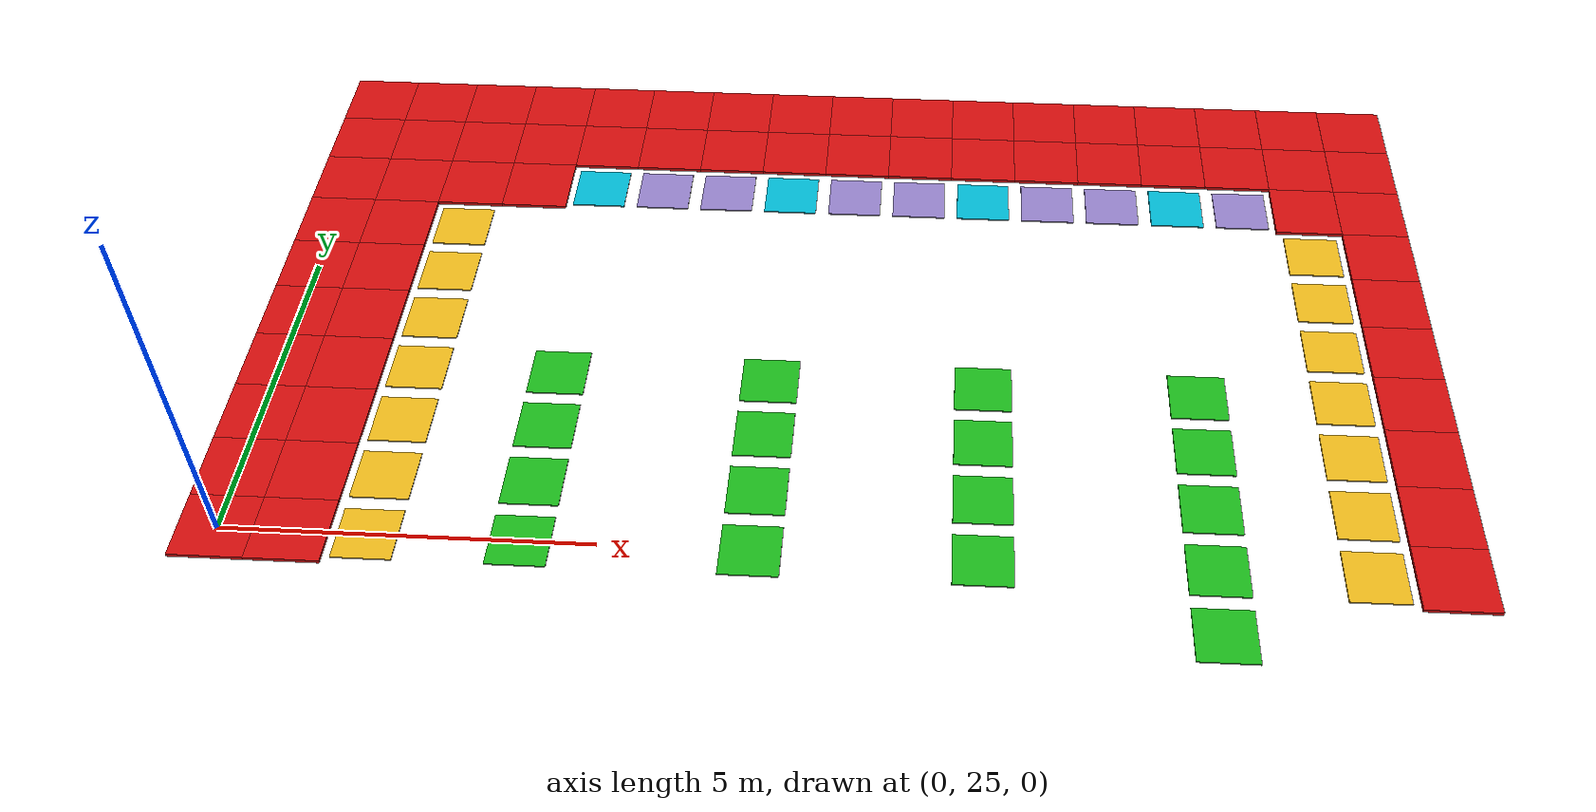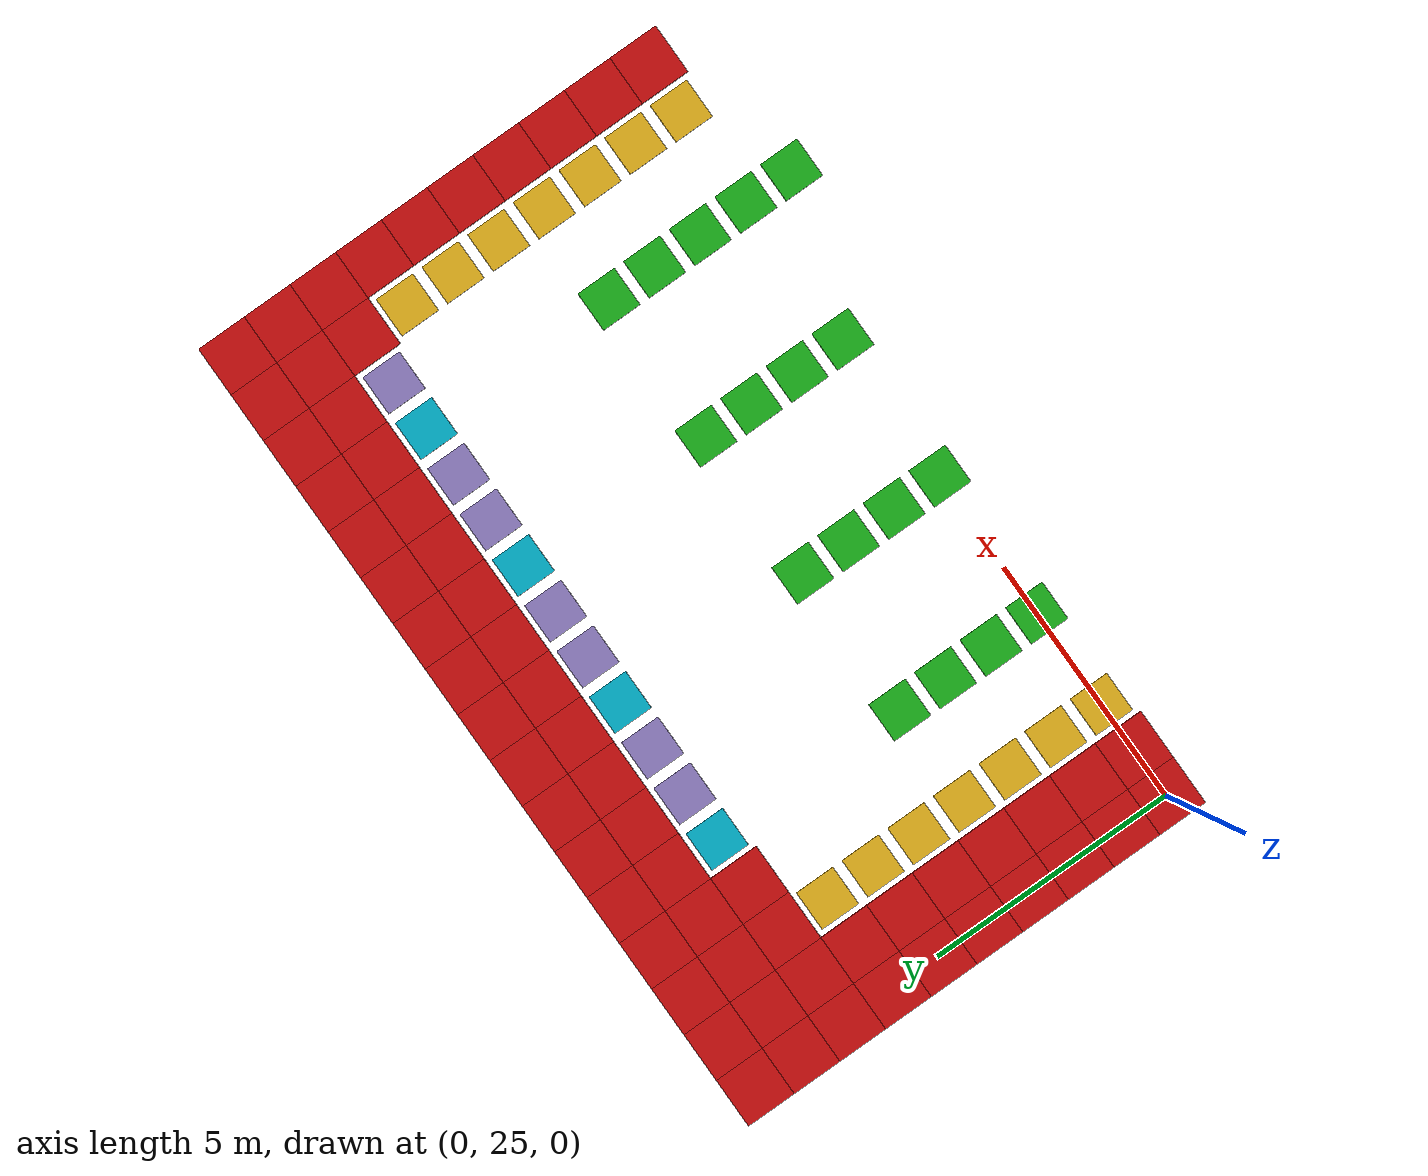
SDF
<sdf version="1.10">
 <world name="warehouse_grid">
  <model name="blocked_0014">
   <static>true</static>
   <pose>0.0
        25.0
        0.045
        0 0 0</pose>
   <link name="link">
    <visual name="visual">
     <geometry><box><size>1.0
                1.0
                0.05</size></box></geometry>
     <material><ambient>0.8 0.05 0.05 1</ambient><diffuse>0.8 0.05 0.05 1</diffuse></material>
    </visual>
   </link>
  </model>
  <model name="blocked_0015">
   <static>true</static>
   <pose>0.0
        26.0
        0.045
        0 0 0</pose>
   <link name="link">
    <visual name="visual">
     <geometry><box><size>1.0
                1.0
                0.05</size></box></geometry>
     <material><ambient>0.8 0.05 0.05 1</ambient><diffuse>0.8 0.05 0.05 1</diffuse></material>
    </visual>
   </link>
  </model>
  <model name="blocked_0016">
   <static>true</static>
   <pose>0.0
        27.0
        0.045
        0 0 0</pose>
   <link name="link">
    <visual name="visual">
     <geometry><box><size>1.0
                1.0
                0.05</size></box></geometry>
     <material><ambient>0.8 0.05 0.05 1</ambient><diffuse>0.8 0.05 0.05 1</diffuse></material>
    </visual>
   </link>
  </model>
  <model name="blocked_0017">
   <static>true</static>
   <pose>0.0
        28.0
        0.045
        0 0 0</pose>
   <link name="link">
    <visual name="visual">
     <geometry><box><size>1.0
                1.0
                0.05</size></box></geometry>
     <material><ambient>0.8 0.05 0.05 1</ambient><diffuse>0.8 0.05 0.05 1</diffuse></material>
    </visual>
   </link>
  </model>
  <model name="blocked_0018">
   <static>true</static>
   <pose>0.0
        29.0
        0.045
        0 0 0</pose>
   <link name="link">
    <visual name="visual">
     <geometry><box><size>1.0
                1.0
                0.05</size></box></geometry>
     <material><ambient>0.8 0.05 0.05 1</ambient><diffuse>0.8 0.05 0.05 1</diffuse></material>
    </visual>
   </link>
  </model>
  <model name="blocked_0019">
   <static>true</static>
   <pose>0.0
        30.0
        0.045
        0 0 0</pose>
   <link name="link">
    <visual name="visual">
     <geometry><box><size>1.0
                1.0
                0.05</size></box></geometry>
     <material><ambient>0.8 0.05 0.05 1</ambient><diffuse>0.8 0.05 0.05 1</diffuse></material>
    </visual>
   </link>
  </model>
  <model name="blocked_0020">
   <static>true</static>
   <pose>0.0
        31.0
        0.045
        0 0 0</pose>
   <link name="link">
    <visual name="visual">
     <geometry><box><size>1.0
                1.0
                0.05</size></box></geometry>
     <material><ambient>0.8 0.05 0.05 1</ambient><diffuse>0.8 0.05 0.05 1</diffuse></material>
    </visual>
   </link>
  </model>
  <model name="blocked_0021">
   <static>true</static>
   <pose>0.0
        32.0
        0.045
        0 0 0</pose>
   <link name="link">
    <visual name="visual">
     <geometry><box><size>1.0
                1.0
                0.05</size></box></geometry>
     <material><ambient>0.8 0.05 0.05 1</ambient><diffuse>0.8 0.05 0.05 1</diffuse></material>
    </visual>
   </link>
  </model>
  <model name="blocked_0022">
   <static>true</static>
   <pose>0.0
        33.0
        0.045
        0 0 0</pose>
   <link name="link">
    <visual name="visual">
     <geometry><box><size>1.0
                1.0
                0.05</size></box></geometry>
     <material><ambient>0.8 0.05 0.05 1</ambient><diffuse>0.8 0.05 0.05 1</diffuse></material>
    </visual>
   </link>
  </model>
  <model name="blocked_0023">
   <static>true</static>
   <pose>0.0
        34.0
        0.045
        0 0 0</pose>
   <link name="link">
    <visual name="visual">
     <geometry><box><size>1.0
                1.0
                0.05</size></box></geometry>
     <material><ambient>0.8 0.05 0.05 1</ambient><diffuse>0.8 0.05 0.05 1</diffuse></material>
    </visual>
   </link>
  </model>
  <model name="blocked_0038">
   <static>true</static>
   <pose>1.0
        25.0
        0.045
        0 0 0</pose>
   <link name="link">
    <visual name="visual">
     <geometry><box><size>1.0
                1.0
                0.05</size></box></geometry>
     <material><ambient>0.8 0.05 0.05 1</ambient><diffuse>0.8 0.05 0.05 1</diffuse></material>
    </visual>
   </link>
  </model>
  <model name="blocked_0039">
   <static>true</static>
   <pose>1.0
        26.0
        0.045
        0 0 0</pose>
   <link name="link">
    <visual name="visual">
     <geometry><box><size>1.0
                1.0
                0.05</size></box></geometry>
     <material><ambient>0.8 0.05 0.05 1</ambient><diffuse>0.8 0.05 0.05 1</diffuse></material>
    </visual>
   </link>
  </model>
  <model name="blocked_0040">
   <static>true</static>
   <pose>1.0
        27.0
        0.045
        0 0 0</pose>
   <link name="link">
    <visual name="visual">
     <geometry><box><size>1.0
                1.0
                0.05</size></box></geometry>
     <material><ambient>0.8 0.05 0.05 1</ambient><diffuse>0.8 0.05 0.05 1</diffuse></material>
    </visual>
   </link>
  </model>
  <model name="blocked_0041">
   <static>true</static>
   <pose>1.0
        28.0
        0.045
        0 0 0</pose>
   <link name="link">
    <visual name="visual">
     <geometry><box><size>1.0
                1.0
                0.05</size></box></geometry>
     <material><ambient>0.8 0.05 0.05 1</ambient><diffuse>0.8 0.05 0.05 1</diffuse></material>
    </visual>
   </link>
  </model>
  <model name="blocked_0042">
   <static>true</static>
   <pose>1.0
        29.0
        0.045
        0 0 0</pose>
   <link name="link">
    <visual name="visual">
     <geometry><box><size>1.0
                1.0
                0.05</size></box></geometry>
     <material><ambient>0.8 0.05 0.05 1</ambient><diffuse>0.8 0.05 0.05 1</diffuse></material>
    </visual>
   </link>
  </model>
  <model name="blocked_0043">
   <static>true</static>
   <pose>1.0
        30.0
        0.045
        0 0 0</pose>
   <link name="link">
    <visual name="visual">
     <geometry><box><size>1.0
                1.0
                0.05</size></box></geometry>
     <material><ambient>0.8 0.05 0.05 1</ambient><diffuse>0.8 0.05 0.05 1</diffuse></material>
    </visual>
   </link>
  </model>
  <model name="blocked_0044">
   <static>true</static>
   <pose>1.0
        31.0
        0.045
        0 0 0</pose>
   <link name="link">
    <visual name="visual">
     <geometry><box><size>1.0
                1.0
                0.05</size></box></geometry>
     <material><ambient>0.8 0.05 0.05 1</ambient><diffuse>0.8 0.05 0.05 1</diffuse></material>
    </visual>
   </link>
  </model>
  <model name="blocked_0045">
   <static>true</static>
   <pose>1.0
        32.0
        0.045
        0 0 0</pose>
   <link name="link">
    <visual name="visual">
     <geometry><box><size>1.0
                1.0
                0.05</size></box></geometry>
     <material><ambient>0.8 0.05 0.05 1</ambient><diffuse>0.8 0.05 0.05 1</diffuse></material>
    </visual>
   </link>
  </model>
  <model name="blocked_0046">
   <static>true</static>
   <pose>1.0
        33.0
        0.045
        0 0 0</pose>
   <link name="link">
    <visual name="visual">
     <geometry><box><size>1.0
                1.0
                0.05</size></box></geometry>
     <material><ambient>0.8 0.05 0.05 1</ambient><diffuse>0.8 0.05 0.05 1</diffuse></material>
    </visual>
   </link>
  </model>
  <model name="blocked_0047">
   <static>true</static>
   <pose>1.0
        34.0
        0.045
        0 0 0</pose>
   <link name="link">
    <visual name="visual">
     <geometry><box><size>1.0
                1.0
                0.05</size></box></geometry>
     <material><ambient>0.8 0.05 0.05 1</ambient><diffuse>0.8 0.05 0.05 1</diffuse></material>
    </visual>
   </link>
  </model>
  <model name="blocked_0051">
   <static>true</static>
   <pose>2.0
        32.0
        0.045
        0 0 0</pose>
   <link name="link">
    <visual name="visual">
     <geometry><box><size>1.0
                1.0
                0.05</size></box></geometry>
     <material><ambient>0.8 0.05 0.05 1</ambient><diffuse>0.8 0.05 0.05 1</diffuse></material>
    </visual>
   </link>
  </model>
  <model name="blocked_0052">
   <static>true</static>
   <pose>2.0
        33.0
        0.045
        0 0 0</pose>
   <link name="link">
    <visual name="visual">
     <geometry><box><size>1.0
                1.0
                0.05</size></box></geometry>
     <material><ambient>0.8 0.05 0.05 1</ambient><diffuse>0.8 0.05 0.05 1</diffuse></material>
    </visual>
   </link>
  </model>
  <model name="blocked_0053">
   <static>true</static>
   <pose>2.0
        34.0
        0.045
        0 0 0</pose>
   <link name="link">
    <visual name="visual">
     <geometry><box><size>1.0
                1.0
                0.05</size></box></geometry>
     <material><ambient>0.8 0.05 0.05 1</ambient><diffuse>0.8 0.05 0.05 1</diffuse></material>
    </visual>
   </link>
  </model>
  <model name="blocked_0057">
   <static>true</static>
   <pose>3.0
        32.0
        0.045
        0 0 0</pose>
   <link name="link">
    <visual name="visual">
     <geometry><box><size>1.0
                1.0
                0.05</size></box></geometry>
     <material><ambient>0.8 0.05 0.05 1</ambient><diffuse>0.8 0.05 0.05 1</diffuse></material>
    </visual>
   </link>
  </model>
  <model name="blocked_0058">
   <static>true</static>
   <pose>3.0
        33.0
        0.045
        0 0 0</pose>
   <link name="link">
    <visual name="visual">
     <geometry><box><size>1.0
                1.0
                0.05</size></box></geometry>
     <material><ambient>0.8 0.05 0.05 1</ambient><diffuse>0.8 0.05 0.05 1</diffuse></material>
    </visual>
   </link>
  </model>
  <model name="blocked_0059">
   <static>true</static>
   <pose>3.0
        34.0
        0.045
        0 0 0</pose>
   <link name="link">
    <visual name="visual">
     <geometry><box><size>1.0
                1.0
                0.05</size></box></geometry>
     <material><ambient>0.8 0.05 0.05 1</ambient><diffuse>0.8 0.05 0.05 1</diffuse></material>
    </visual>
   </link>
  </model>
  <model name="blocked_0062">
   <static>true</static>
   <pose>4.0
        33.0
        0.045
        0 0 0</pose>
   <link name="link">
    <visual name="visual">
     <geometry><box><size>1.0
                1.0
                0.05</size></box></geometry>
     <material><ambient>0.8 0.05 0.05 1</ambient><diffuse>0.8 0.05 0.05 1</diffuse></material>
    </visual>
   </link>
  </model>
  <model name="blocked_0063">
   <static>true</static>
   <pose>4.0
        34.0
        0.045
        0 0 0</pose>
   <link name="link">
    <visual name="visual">
     <geometry><box><size>1.0
                1.0
                0.05</size></box></geometry>
     <material><ambient>0.8 0.05 0.05 1</ambient><diffuse>0.8 0.05 0.05 1</diffuse></material>
    </visual>
   </link>
  </model>
  <model name="blocked_0066">
   <static>true</static>
   <pose>5.0
        33.0
        0.045
        0 0 0</pose>
   <link name="link">
    <visual name="visual">
     <geometry><box><size>1.0
                1.0
                0.05</size></box></geometry>
     <material><ambient>0.8 0.05 0.05 1</ambient><diffuse>0.8 0.05 0.05 1</diffuse></material>
    </visual>
   </link>
  </model>
  <model name="blocked_0067">
   <static>true</static>
   <pose>5.0
        34.0
        0.045
        0 0 0</pose>
   <link name="link">
    <visual name="visual">
     <geometry><box><size>1.0
                1.0
                0.05</size></box></geometry>
     <material><ambient>0.8 0.05 0.05 1</ambient><diffuse>0.8 0.05 0.05 1</diffuse></material>
    </visual>
   </link>
  </model>
  <model name="blocked_0070">
   <static>true</static>
   <pose>6.0
        33.0
        0.045
        0 0 0</pose>
   <link name="link">
    <visual name="visual">
     <geometry><box><size>1.0
                1.0
                0.05</size></box></geometry>
     <material><ambient>0.8 0.05 0.05 1</ambient><diffuse>0.8 0.05 0.05 1</diffuse></material>
    </visual>
   </link>
  </model>
  <model name="blocked_0071">
   <static>true</static>
   <pose>6.0
        34.0
        0.045
        0 0 0</pose>
   <link name="link">
    <visual name="visual">
     <geometry><box><size>1.0
                1.0
                0.05</size></box></geometry>
     <material><ambient>0.8 0.05 0.05 1</ambient><diffuse>0.8 0.05 0.05 1</diffuse></material>
    </visual>
   </link>
  </model>
  <model name="blocked_0074">
   <static>true</static>
   <pose>7.0
        33.0
        0.045
        0 0 0</pose>
   <link name="link">
    <visual name="visual">
     <geometry><box><size>1.0
                1.0
                0.05</size></box></geometry>
     <material><ambient>0.8 0.05 0.05 1</ambient><diffuse>0.8 0.05 0.05 1</diffuse></material>
    </visual>
   </link>
  </model>
  <model name="blocked_0075">
   <static>true</static>
   <pose>7.0
        34.0
        0.045
        0 0 0</pose>
   <link name="link">
    <visual name="visual">
     <geometry><box><size>1.0
                1.0
                0.05</size></box></geometry>
     <material><ambient>0.8 0.05 0.05 1</ambient><diffuse>0.8 0.05 0.05 1</diffuse></material>
    </visual>
   </link>
  </model>
  <model name="blocked_0078">
   <static>true</static>
   <pose>8.0
        33.0
        0.045
        0 0 0</pose>
   <link name="link">
    <visual name="visual">
     <geometry><box><size>1.0
                1.0
                0.05</size></box></geometry>
     <material><ambient>0.8 0.05 0.05 1</ambient><diffuse>0.8 0.05 0.05 1</diffuse></material>
    </visual>
   </link>
  </model>
  <model name="blocked_0079">
   <static>true</static>
   <pose>8.0
        34.0
        0.045
        0 0 0</pose>
   <link name="link">
    <visual name="visual">
     <geometry><box><size>1.0
                1.0
                0.05</size></box></geometry>
     <material><ambient>0.8 0.05 0.05 1</ambient><diffuse>0.8 0.05 0.05 1</diffuse></material>
    </visual>
   </link>
  </model>
  <model name="blocked_0082">
   <static>true</static>
   <pose>9.0
        33.0
        0.045
        0 0 0</pose>
   <link name="link">
    <visual name="visual">
     <geometry><box><size>1.0
                1.0
                0.05</size></box></geometry>
     <material><ambient>0.8 0.05 0.05 1</ambient><diffuse>0.8 0.05 0.05 1</diffuse></material>
    </visual>
   </link>
  </model>
  <model name="blocked_0083">
   <static>true</static>
   <pose>9.0
        34.0
        0.045
        0 0 0</pose>
   <link name="link">
    <visual name="visual">
     <geometry><box><size>1.0
                1.0
                0.05</size></box></geometry>
     <material><ambient>0.8 0.05 0.05 1</ambient><diffuse>0.8 0.05 0.05 1</diffuse></material>
    </visual>
   </link>
  </model>
  <model name="blocked_0086">
   <static>true</static>
   <pose>10.0
        33.0
        0.045
        0 0 0</pose>
   <link name="link">
    <visual name="visual">
     <geometry><box><size>1.0
                1.0
                0.05</size></box></geometry>
     <material><ambient>0.8 0.05 0.05 1</ambient><diffuse>0.8 0.05 0.05 1</diffuse></material>
    </visual>
   </link>
  </model>
  <model name="blocked_0087">
   <static>true</static>
   <pose>10.0
        34.0
        0.045
        0 0 0</pose>
   <link name="link">
    <visual name="visual">
     <geometry><box><size>1.0
                1.0
                0.05</size></box></geometry>
     <material><ambient>0.8 0.05 0.05 1</ambient><diffuse>0.8 0.05 0.05 1</diffuse></material>
    </visual>
   </link>
  </model>
  <model name="blocked_0090">
   <static>true</static>
   <pose>11.0
        33.0
        0.045
        0 0 0</pose>
   <link name="link">
    <visual name="visual">
     <geometry><box><size>1.0
                1.0
                0.05</size></box></geometry>
     <material><ambient>0.8 0.05 0.05 1</ambient><diffuse>0.8 0.05 0.05 1</diffuse></material>
    </visual>
   </link>
  </model>
  <model name="blocked_0091">
   <static>true</static>
   <pose>11.0
        34.0
        0.045
        0 0 0</pose>
   <link name="link">
    <visual name="visual">
     <geometry><box><size>1.0
                1.0
                0.05</size></box></geometry>
     <material><ambient>0.8 0.05 0.05 1</ambient><diffuse>0.8 0.05 0.05 1</diffuse></material>
    </visual>
   </link>
  </model>
  <model name="blocked_0094">
   <static>true</static>
   <pose>12.0
        33.0
        0.045
        0 0 0</pose>
   <link name="link">
    <visual name="visual">
     <geometry><box><size>1.0
                1.0
                0.05</size></box></geometry>
     <material><ambient>0.8 0.05 0.05 1</ambient><diffuse>0.8 0.05 0.05 1</diffuse></material>
    </visual>
   </link>
  </model>
  <model name="blocked_0095">
   <static>true</static>
   <pose>12.0
        34.0
        0.045
        0 0 0</pose>
   <link name="link">
    <visual name="visual">
     <geometry><box><size>1.0
                1.0
                0.05</size></box></geometry>
     <material><ambient>0.8 0.05 0.05 1</ambient><diffuse>0.8 0.05 0.05 1</diffuse></material>
    </visual>
   </link>
  </model>
  <model name="blocked_0098">
   <static>true</static>
   <pose>13.0
        33.0
        0.045
        0 0 0</pose>
   <link name="link">
    <visual name="visual">
     <geometry><box><size>1.0
                1.0
                0.05</size></box></geometry>
     <material><ambient>0.8 0.05 0.05 1</ambient><diffuse>0.8 0.05 0.05 1</diffuse></material>
    </visual>
   </link>
  </model>
  <model name="blocked_0099">
   <static>true</static>
   <pose>13.0
        34.0
        0.045
        0 0 0</pose>
   <link name="link">
    <visual name="visual">
     <geometry><box><size>1.0
                1.0
                0.05</size></box></geometry>
     <material><ambient>0.8 0.05 0.05 1</ambient><diffuse>0.8 0.05 0.05 1</diffuse></material>
    </visual>
   </link>
  </model>
  <model name="blocked_0102">
   <static>true</static>
   <pose>14.0
        33.0
        0.045
        0 0 0</pose>
   <link name="link">
    <visual name="visual">
     <geometry><box><size>1.0
                1.0
                0.05</size></box></geometry>
     <material><ambient>0.8 0.05 0.05 1</ambient><diffuse>0.8 0.05 0.05 1</diffuse></material>
    </visual>
   </link>
  </model>
  <model name="blocked_0103">
   <static>true</static>
   <pose>14.0
        34.0
        0.045
        0 0 0</pose>
   <link name="link">
    <visual name="visual">
     <geometry><box><size>1.0
                1.0
                0.05</size></box></geometry>
     <material><ambient>0.8 0.05 0.05 1</ambient><diffuse>0.8 0.05 0.05 1</diffuse></material>
    </visual>
   </link>
  </model>
  <model name="blocked_0107">
   <static>true</static>
   <pose>15.0
        32.0
        0.045
        0 0 0</pose>
   <link name="link">
    <visual name="visual">
     <geometry><box><size>1.0
                1.0
                0.05</size></box></geometry>
     <material><ambient>0.8 0.05 0.05 1</ambient><diffuse>0.8 0.05 0.05 1</diffuse></material>
    </visual>
   </link>
  </model>
  <model name="blocked_0108">
   <static>true</static>
   <pose>15.0
        33.0
        0.045
        0 0 0</pose>
   <link name="link">
    <visual name="visual">
     <geometry><box><size>1.0
                1.0
                0.05</size></box></geometry>
     <material><ambient>0.8 0.05 0.05 1</ambient><diffuse>0.8 0.05 0.05 1</diffuse></material>
    </visual>
   </link>
  </model>
  <model name="blocked_0109">
   <static>true</static>
   <pose>15.0
        34.0
        0.045
        0 0 0</pose>
   <link name="link">
    <visual name="visual">
     <geometry><box><size>1.0
                1.0
                0.05</size></box></geometry>
     <material><ambient>0.8 0.05 0.05 1</ambient><diffuse>0.8 0.05 0.05 1</diffuse></material>
    </visual>
   </link>
  </model>
  <model name="blocked_0124">
   <static>true</static>
   <pose>16.0
        25.0
        0.045
        0 0 0</pose>
   <link name="link">
    <visual name="visual">
     <geometry><box><size>1.0
                1.0
                0.05</size></box></geometry>
     <material><ambient>0.8 0.05 0.05 1</ambient><diffuse>0.8 0.05 0.05 1</diffuse></material>
    </visual>
   </link>
  </model>
  <model name="blocked_0125">
   <static>true</static>
   <pose>16.0
        26.0
        0.045
        0 0 0</pose>
   <link name="link">
    <visual name="visual">
     <geometry><box><size>1.0
                1.0
                0.05</size></box></geometry>
     <material><ambient>0.8 0.05 0.05 1</ambient><diffuse>0.8 0.05 0.05 1</diffuse></material>
    </visual>
   </link>
  </model>
  <model name="blocked_0126">
   <static>true</static>
   <pose>16.0
        27.0
        0.045
        0 0 0</pose>
   <link name="link">
    <visual name="visual">
     <geometry><box><size>1.0
                1.0
                0.05</size></box></geometry>
     <material><ambient>0.8 0.05 0.05 1</ambient><diffuse>0.8 0.05 0.05 1</diffuse></material>
    </visual>
   </link>
  </model>
  <model name="blocked_0127">
   <static>true</static>
   <pose>16.0
        28.0
        0.045
        0 0 0</pose>
   <link name="link">
    <visual name="visual">
     <geometry><box><size>1.0
                1.0
                0.05</size></box></geometry>
     <material><ambient>0.8 0.05 0.05 1</ambient><diffuse>0.8 0.05 0.05 1</diffuse></material>
    </visual>
   </link>
  </model>
  <model name="blocked_0128">
   <static>true</static>
   <pose>16.0
        29.0
        0.045
        0 0 0</pose>
   <link name="link">
    <visual name="visual">
     <geometry><box><size>1.0
                1.0
                0.05</size></box></geometry>
     <material><ambient>0.8 0.05 0.05 1</ambient><diffuse>0.8 0.05 0.05 1</diffuse></material>
    </visual>
   </link>
  </model>
  <model name="blocked_0129">
   <static>true</static>
   <pose>16.0
        30.0
        0.045
        0 0 0</pose>
   <link name="link">
    <visual name="visual">
     <geometry><box><size>1.0
                1.0
                0.05</size></box></geometry>
     <material><ambient>0.8 0.05 0.05 1</ambient><diffuse>0.8 0.05 0.05 1</diffuse></material>
    </visual>
   </link>
  </model>
  <model name="blocked_0130">
   <static>true</static>
   <pose>16.0
        31.0
        0.045
        0 0 0</pose>
   <link name="link">
    <visual name="visual">
     <geometry><box><size>1.0
                1.0
                0.05</size></box></geometry>
     <material><ambient>0.8 0.05 0.05 1</ambient><diffuse>0.8 0.05 0.05 1</diffuse></material>
    </visual>
   </link>
  </model>
  <model name="blocked_0131">
   <static>true</static>
   <pose>16.0
        32.0
        0.045
        0 0 0</pose>
   <link name="link">
    <visual name="visual">
     <geometry><box><size>1.0
                1.0
                0.05</size></box></geometry>
     <material><ambient>0.8 0.05 0.05 1</ambient><diffuse>0.8 0.05 0.05 1</diffuse></material>
    </visual>
   </link>
  </model>
  <model name="blocked_0132">
   <static>true</static>
   <pose>16.0
        33.0
        0.045
        0 0 0</pose>
   <link name="link">
    <visual name="visual">
     <geometry><box><size>1.0
                1.0
                0.05</size></box></geometry>
     <material><ambient>0.8 0.05 0.05 1</ambient><diffuse>0.8 0.05 0.05 1</diffuse></material>
    </visual>
   </link>
  </model>
  <model name="blocked_0133">
   <static>true</static>
   <pose>16.0
        34.0
        0.045
        0 0 0</pose>
   <link name="link">
    <visual name="visual">
     <geometry><box><size>1.0
                1.0
                0.05</size></box></geometry>
     <material><ambient>0.8 0.05 0.05 1</ambient><diffuse>0.8 0.05 0.05 1</diffuse></material>
    </visual>
   </link>
  </model>
  <model name="dropoff_003">
   <static>true</static>
   <pose>2.0
        25.0
        0.02
        0 0 0</pose>
   <link name="link">
    <visual name="visual">
     <geometry><box><size>0.8
                0.8
                0.02</size></box></geometry>
     <material><ambient>0.90 0.70 0.10 1</ambient><diffuse>0.90 0.70 0.10 1</diffuse></material>
    </visual>
   </link>
  </model>
  <model name="dropoff_004">
   <static>true</static>
   <pose>2.0
        26.0
        0.02
        0 0 0</pose>
   <link name="link">
    <visual name="visual">
     <geometry><box><size>0.8
                0.8
                0.02</size></box></geometry>
     <material><ambient>0.90 0.70 0.10 1</ambient><diffuse>0.90 0.70 0.10 1</diffuse></material>
    </visual>
   </link>
  </model>
  <model name="dropoff_005">
   <static>true</static>
   <pose>2.0
        27.0
        0.02
        0 0 0</pose>
   <link name="link">
    <visual name="visual">
     <geometry><box><size>0.8
                0.8
                0.02</size></box></geometry>
     <material><ambient>0.90 0.70 0.10 1</ambient><diffuse>0.90 0.70 0.10 1</diffuse></material>
    </visual>
   </link>
  </model>
  <model name="dropoff_006">
   <static>true</static>
   <pose>2.0
        28.0
        0.02
        0 0 0</pose>
   <link name="link">
    <visual name="visual">
     <geometry><box><size>0.8
                0.8
                0.02</size></box></geometry>
     <material><ambient>0.90 0.70 0.10 1</ambient><diffuse>0.90 0.70 0.10 1</diffuse></material>
    </visual>
   </link>
  </model>
  <model name="dropoff_007">
   <static>true</static>
   <pose>2.0
        29.0
        0.02
        0 0 0</pose>
   <link name="link">
    <visual name="visual">
     <geometry><box><size>0.8
                0.8
                0.02</size></box></geometry>
     <material><ambient>0.90 0.70 0.10 1</ambient><diffuse>0.90 0.70 0.10 1</diffuse></material>
    </visual>
   </link>
  </model>
  <model name="dropoff_008">
   <static>true</static>
   <pose>2.0
        30.0
        0.02
        0 0 0</pose>
   <link name="link">
    <visual name="visual">
     <geometry><box><size>0.8
                0.8
                0.02</size></box></geometry>
     <material><ambient>0.90 0.70 0.10 1</ambient><diffuse>0.90 0.70 0.10 1</diffuse></material>
    </visual>
   </link>
  </model>
  <model name="dropoff_009">
   <static>true</static>
   <pose>2.0
        31.0
        0.02
        0 0 0</pose>
   <link name="link">
    <visual name="visual">
     <geometry><box><size>0.8
                0.8
                0.02</size></box></geometry>
     <material><ambient>0.90 0.70 0.10 1</ambient><diffuse>0.90 0.70 0.10 1</diffuse></material>
    </visual>
   </link>
  </model>
  <model name="dropoff_012">
   <static>true</static>
   <pose>15.0
        25.0
        0.02
        0 0 0</pose>
   <link name="link">
    <visual name="visual">
     <geometry><box><size>0.8
                0.8
                0.02</size></box></geometry>
     <material><ambient>0.90 0.70 0.10 1</ambient><diffuse>0.90 0.70 0.10 1</diffuse></material>
    </visual>
   </link>
  </model>
  <model name="dropoff_013">
   <static>true</static>
   <pose>15.0
        26.0
        0.02
        0 0 0</pose>
   <link name="link">
    <visual name="visual">
     <geometry><box><size>0.8
                0.8
                0.02</size></box></geometry>
     <material><ambient>0.90 0.70 0.10 1</ambient><diffuse>0.90 0.70 0.10 1</diffuse></material>
    </visual>
   </link>
  </model>
  <model name="dropoff_014">
   <static>true</static>
   <pose>15.0
        27.0
        0.02
        0 0 0</pose>
   <link name="link">
    <visual name="visual">
     <geometry><box><size>0.8
                0.8
                0.02</size></box></geometry>
     <material><ambient>0.90 0.70 0.10 1</ambient><diffuse>0.90 0.70 0.10 1</diffuse></material>
    </visual>
   </link>
  </model>
  <model name="dropoff_015">
   <static>true</static>
   <pose>15.0
        28.0
        0.02
        0 0 0</pose>
   <link name="link">
    <visual name="visual">
     <geometry><box><size>0.8
                0.8
                0.02</size></box></geometry>
     <material><ambient>0.90 0.70 0.10 1</ambient><diffuse>0.90 0.70 0.10 1</diffuse></material>
    </visual>
   </link>
  </model>
  <model name="dropoff_016">
   <static>true</static>
   <pose>15.0
        29.0
        0.02
        0 0 0</pose>
   <link name="link">
    <visual name="visual">
     <geometry><box><size>0.8
                0.8
                0.02</size></box></geometry>
     <material><ambient>0.90 0.70 0.10 1</ambient><diffuse>0.90 0.70 0.10 1</diffuse></material>
    </visual>
   </link>
  </model>
  <model name="dropoff_017">
   <static>true</static>
   <pose>15.0
        30.0
        0.02
        0 0 0</pose>
   <link name="link">
    <visual name="visual">
     <geometry><box><size>0.8
                0.8
                0.02</size></box></geometry>
     <material><ambient>0.90 0.70 0.10 1</ambient><diffuse>0.90 0.70 0.10 1</diffuse></material>
    </visual>
   </link>
  </model>
  <model name="dropoff_018">
   <static>true</static>
   <pose>15.0
        31.0
        0.02
        0 0 0</pose>
   <link name="link">
    <visual name="visual">
     <geometry><box><size>0.8
                0.8
                0.02</size></box></geometry>
     <material><ambient>0.90 0.70 0.10 1</ambient><diffuse>0.90 0.70 0.10 1</diffuse></material>
    </visual>
   </link>
  </model>
  <model name="shelf_006">
   <static>true</static>
   <pose>4.0
        25.0
        0.02
        0 0 0</pose>
   <link name="link">
    <visual name="visual">
     <geometry><box><size>0.8
                0.8
                0.02</size></box></geometry>
     <material><ambient>0.10 0.70 0.10 1</ambient><diffuse>0.10 0.70 0.10 1</diffuse></material>
    </visual>
   </link>
  </model>
  <model name="shelf_007">
   <static>true</static>
   <pose>4.0
        26.0
        0.02
        0 0 0</pose>
   <link name="link">
    <visual name="visual">
     <geometry><box><size>0.8
                0.8
                0.02</size></box></geometry>
     <material><ambient>0.10 0.70 0.10 1</ambient><diffuse>0.10 0.70 0.10 1</diffuse></material>
    </visual>
   </link>
  </model>
  <model name="shelf_008">
   <static>true</static>
   <pose>4.0
        27.0
        0.02
        0 0 0</pose>
   <link name="link">
    <visual name="visual">
     <geometry><box><size>0.8
                0.8
                0.02</size></box></geometry>
     <material><ambient>0.10 0.70 0.10 1</ambient><diffuse>0.10 0.70 0.10 1</diffuse></material>
    </visual>
   </link>
  </model>
  <model name="shelf_009">
   <static>true</static>
   <pose>4.0
        28.0
        0.02
        0 0 0</pose>
   <link name="link">
    <visual name="visual">
     <geometry><box><size>0.8
                0.8
                0.02</size></box></geometry>
     <material><ambient>0.10 0.70 0.10 1</ambient><diffuse>0.10 0.70 0.10 1</diffuse></material>
    </visual>
   </link>
  </model>
  <model name="shelf_015">
   <static>true</static>
   <pose>7.0
        25.0
        0.02
        0 0 0</pose>
   <link name="link">
    <visual name="visual">
     <geometry><box><size>0.8
                0.8
                0.02</size></box></geometry>
     <material><ambient>0.10 0.70 0.10 1</ambient><diffuse>0.10 0.70 0.10 1</diffuse></material>
    </visual>
   </link>
  </model>
  <model name="shelf_016">
   <static>true</static>
   <pose>7.0
        26.0
        0.02
        0 0 0</pose>
   <link name="link">
    <visual name="visual">
     <geometry><box><size>0.8
                0.8
                0.02</size></box></geometry>
     <material><ambient>0.10 0.70 0.10 1</ambient><diffuse>0.10 0.70 0.10 1</diffuse></material>
    </visual>
   </link>
  </model>
  <model name="shelf_017">
   <static>true</static>
   <pose>7.0
        27.0
        0.02
        0 0 0</pose>
   <link name="link">
    <visual name="visual">
     <geometry><box><size>0.8
                0.8
                0.02</size></box></geometry>
     <material><ambient>0.10 0.70 0.10 1</ambient><diffuse>0.10 0.70 0.10 1</diffuse></material>
    </visual>
   </link>
  </model>
  <model name="shelf_018">
   <static>true</static>
   <pose>7.0
        28.0
        0.02
        0 0 0</pose>
   <link name="link">
    <visual name="visual">
     <geometry><box><size>0.8
                0.8
                0.02</size></box></geometry>
     <material><ambient>0.10 0.70 0.10 1</ambient><diffuse>0.10 0.70 0.10 1</diffuse></material>
    </visual>
   </link>
  </model>
  <model name="shelf_024">
   <static>true</static>
   <pose>10.0
        25.0
        0.02
        0 0 0</pose>
   <link name="link">
    <visual name="visual">
     <geometry><box><size>0.8
                0.8
                0.02</size></box></geometry>
     <material><ambient>0.10 0.70 0.10 1</ambient><diffuse>0.10 0.70 0.10 1</diffuse></material>
    </visual>
   </link>
  </model>
  <model name="shelf_025">
   <static>true</static>
   <pose>10.0
        26.0
        0.02
        0 0 0</pose>
   <link name="link">
    <visual name="visual">
     <geometry><box><size>0.8
                0.8
                0.02</size></box></geometry>
     <material><ambient>0.10 0.70 0.10 1</ambient><diffuse>0.10 0.70 0.10 1</diffuse></material>
    </visual>
   </link>
  </model>
  <model name="shelf_026">
   <static>true</static>
   <pose>10.0
        27.0
        0.02
        0 0 0</pose>
   <link name="link">
    <visual name="visual">
     <geometry><box><size>0.8
                0.8
                0.02</size></box></geometry>
     <material><ambient>0.10 0.70 0.10 1</ambient><diffuse>0.10 0.70 0.10 1</diffuse></material>
    </visual>
   </link>
  </model>
  <model name="shelf_027">
   <static>true</static>
   <pose>10.0
        28.0
        0.02
        0 0 0</pose>
   <link name="link">
    <visual name="visual">
     <geometry><box><size>0.8
                0.8
                0.02</size></box></geometry>
     <material><ambient>0.10 0.70 0.10 1</ambient><diffuse>0.10 0.70 0.10 1</diffuse></material>
    </visual>
   </link>
  </model>
  <model name="shelf_032">
   <static>true</static>
   <pose>13.0
        24.0
        0.02
        0 0 0</pose>
   <link name="link">
    <visual name="visual">
     <geometry><box><size>0.8
                0.8
                0.02</size></box></geometry>
     <material><ambient>0.10 0.70 0.10 1</ambient><diffuse>0.10 0.70 0.10 1</diffuse></material>
    </visual>
   </link>
  </model>
  <model name="shelf_033">
   <static>true</static>
   <pose>13.0
        25.0
        0.02
        0 0 0</pose>
   <link name="link">
    <visual name="visual">
     <geometry><box><size>0.8
                0.8
                0.02</size></box></geometry>
     <material><ambient>0.10 0.70 0.10 1</ambient><diffuse>0.10 0.70 0.10 1</diffuse></material>
    </visual>
   </link>
  </model>
  <model name="shelf_034">
   <static>true</static>
   <pose>13.0
        26.0
        0.02
        0 0 0</pose>
   <link name="link">
    <visual name="visual">
     <geometry><box><size>0.8
                0.8
                0.02</size></box></geometry>
     <material><ambient>0.10 0.70 0.10 1</ambient><diffuse>0.10 0.70 0.10 1</diffuse></material>
    </visual>
   </link>
  </model>
  <model name="shelf_035">
   <static>true</static>
   <pose>13.0
        27.0
        0.02
        0 0 0</pose>
   <link name="link">
    <visual name="visual">
     <geometry><box><size>0.8
                0.8
                0.02</size></box></geometry>
     <material><ambient>0.10 0.70 0.10 1</ambient><diffuse>0.10 0.70 0.10 1</diffuse></material>
    </visual>
   </link>
  </model>
  <model name="shelf_036">
   <static>true</static>
   <pose>13.0
        28.0
        0.02
        0 0 0</pose>
   <link name="link">
    <visual name="visual">
     <geometry><box><size>0.8
                0.8
                0.02</size></box></geometry>
     <material><ambient>0.10 0.70 0.10 1</ambient><diffuse>0.10 0.70 0.10 1</diffuse></material>
    </visual>
   </link>
  </model>
  <model name="charging_001">
   <static>true</static>
   <pose>4.0
        32.0
        0.02
        0 0 0</pose>
   <link name="link">
    <visual name="visual">
     <geometry><box><size>0.8
                0.8
                0.02</size></box></geometry>
     <material><ambient>0.00 0.70 0.80 1</ambient><diffuse>0.00 0.70 0.80 1</diffuse></material>
    </visual>
   </link>
  </model>
  <model name="charge_queue_001">
   <static>true</static>
   <pose>5.0
        32.0
        0.02
        0 0 0</pose>
   <link name="link">
    <visual name="visual">
     <geometry><box><size>0.8
                0.8
                0.02</size></box></geometry>
     <material><ambient>0.56 0.49 0.76 1</ambient><diffuse>0.56 0.49 0.76 1</diffuse></material>
    </visual>
   </link>
  </model>
  <model name="charge_queue_002">
   <static>true</static>
   <pose>6.0
        32.0
        0.02
        0 0 0</pose>
   <link name="link">
    <visual name="visual">
     <geometry><box><size>0.8
                0.8
                0.02</size></box></geometry>
     <material><ambient>0.56 0.49 0.76 1</ambient><diffuse>0.56 0.49 0.76 1</diffuse></material>
    </visual>
   </link>
  </model>
  <model name="charging_002">
   <static>true</static>
   <pose>7.0
        32.0
        0.02
        0 0 0</pose>
   <link name="link">
    <visual name="visual">
     <geometry><box><size>0.8
                0.8
                0.02</size></box></geometry>
     <material><ambient>0.00 0.70 0.80 1</ambient><diffuse>0.00 0.70 0.80 1</diffuse></material>
    </visual>
   </link>
  </model>
  <model name="charge_queue_003">
   <static>true</static>
   <pose>8.0
        32.0
        0.02
        0 0 0</pose>
   <link name="link">
    <visual name="visual">
     <geometry><box><size>0.8
                0.8
                0.02</size></box></geometry>
     <material><ambient>0.56 0.49 0.76 1</ambient><diffuse>0.56 0.49 0.76 1</diffuse></material>
    </visual>
   </link>
  </model>
  <model name="charge_queue_004">
   <static>true</static>
   <pose>9.0
        32.0
        0.02
        0 0 0</pose>
   <link name="link">
    <visual name="visual">
     <geometry><box><size>0.8
                0.8
                0.02</size></box></geometry>
     <material><ambient>0.56 0.49 0.76 1</ambient><diffuse>0.56 0.49 0.76 1</diffuse></material>
    </visual>
   </link>
  </model>
  <model name="charging_003">
   <static>true</static>
   <pose>10.0
        32.0
        0.02
        0 0 0</pose>
   <link name="link">
    <visual name="visual">
     <geometry><box><size>0.8
                0.8
                0.02</size></box></geometry>
     <material><ambient>0.00 0.70 0.80 1</ambient><diffuse>0.00 0.70 0.80 1</diffuse></material>
    </visual>
   </link>
  </model>
  <model name="charge_queue_005">
   <static>true</static>
   <pose>11.0
        32.0
        0.02
        0 0 0</pose>
   <link name="link">
    <visual name="visual">
     <geometry><box><size>0.8
                0.8
                0.02</size></box></geometry>
     <material><ambient>0.56 0.49 0.76 1</ambient><diffuse>0.56 0.49 0.76 1</diffuse></material>
    </visual>
   </link>
  </model>
  <model name="charge_queue_006">
   <static>true</static>
   <pose>12.0
        32.0
        0.02
        0 0 0</pose>
   <link name="link">
    <visual name="visual">
     <geometry><box><size>0.8
                0.8
                0.02</size></box></geometry>
     <material><ambient>0.56 0.49 0.76 1</ambient><diffuse>0.56 0.49 0.76 1</diffuse></material>
    </visual>
   </link>
  </model>
  <model name="charging_004">
   <static>true</static>
   <pose>13.0
        32.0
        0.02
        0 0 0</pose>
   <link name="link">
    <visual name="visual">
     <geometry><box><size>0.8
                0.8
                0.02</size></box></geometry>
     <material><ambient>0.00 0.70 0.80 1</ambient><diffuse>0.00 0.70 0.80 1</diffuse></material>
    </visual>
   </link>
  </model>
  <model name="charge_queue_007">
   <static>true</static>
   <pose>14.0
        32.0
        0.02
        0 0 0</pose>
   <link name="link">
    <visual name="visual">
     <geometry><box><size>0.8
                0.8
                0.02</size></box></geometry>
     <material><ambient>0.56 0.49 0.76 1</ambient><diffuse>0.56 0.49 0.76 1</diffuse></material>
    </visual>
   </link>
  </model>
 </world>
</sdf>
